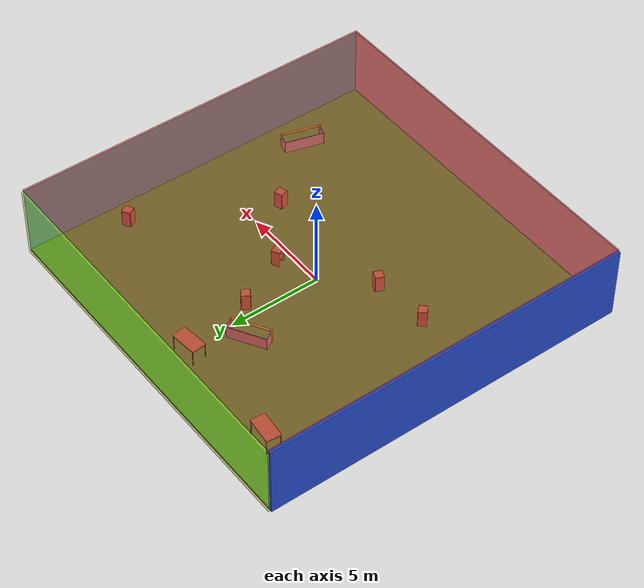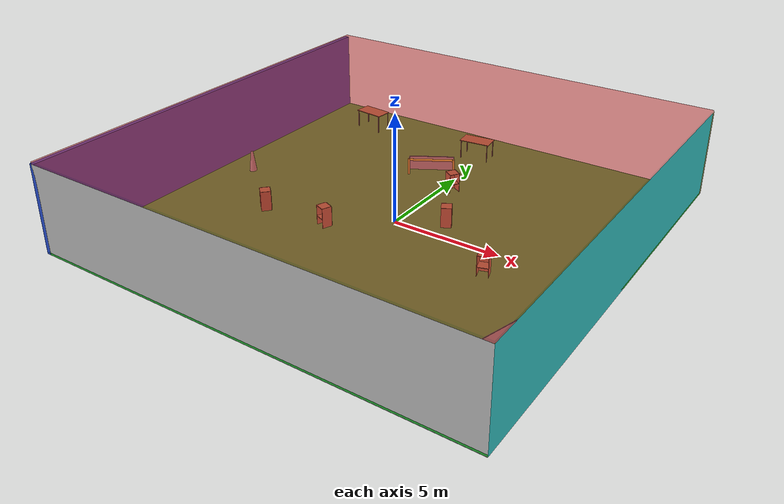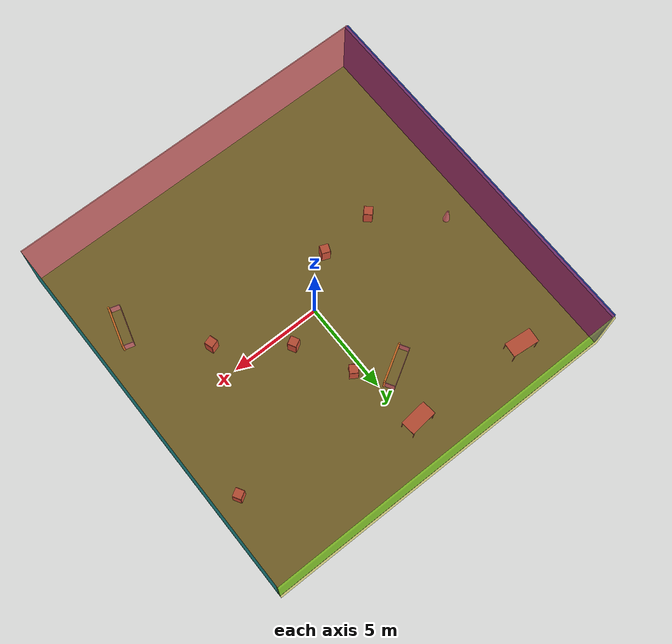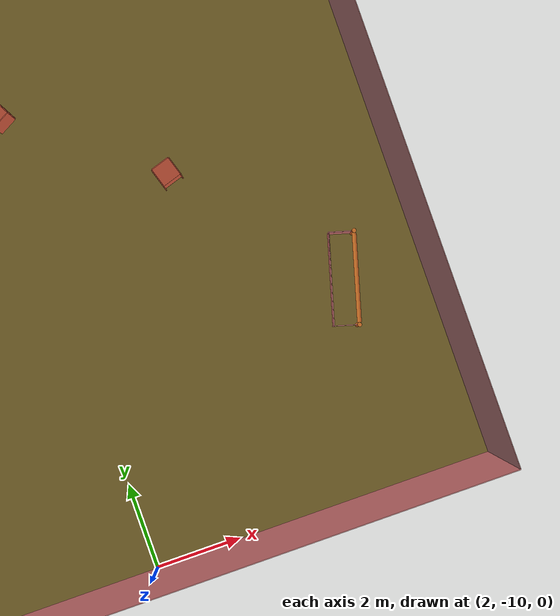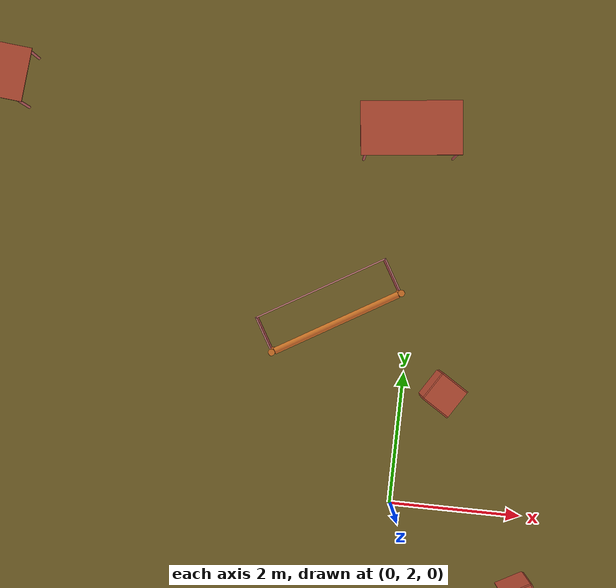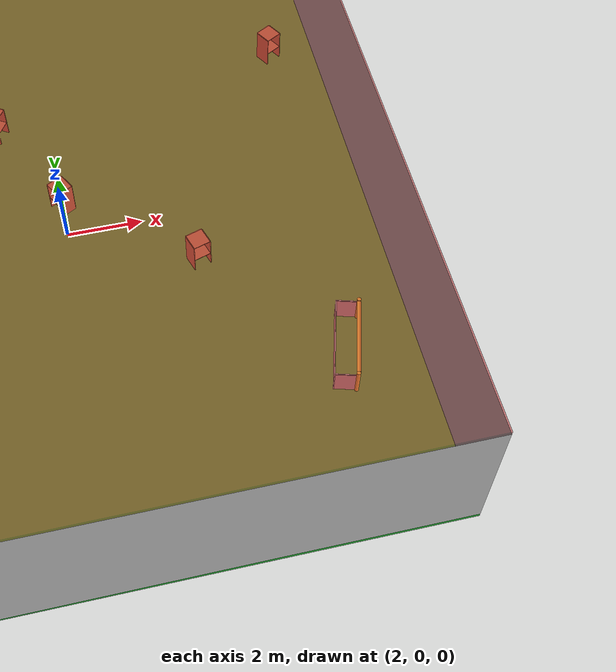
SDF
<sdf version="1.4">
 <world name="default">
  <physics type="ode">
   <max_step_size>0.001</max_step_size>
   <real_time_factor>1</real_time_factor>
   <real_time_update_rate>1000</real_time_update_rate>
   <gravity>0 0 -9.8</gravity>
  </physics>
  <scene><ambient>0.4 0.4 0.4 1</ambient><background>0.7 0.7 0.7 1</background><shadows>1</shadows></scene>
  <model name="Surrounding">
   <static>1</static>
   <link name="Ceiling">
    <collision name="Ceiling_Collision"><geometry><box><size>20 20 0.1</size></box></geometry></collision>
    <visual name="Ceiling_Visual">
     <geometry><box><size>20 20 0.1</size></box></geometry>
     <material>
      <script><uri>file://media/materials/scripts/gazebo.material</uri><name>Gazebo/RedTransparent</name></script>
     </material>
    </visual>
    <pose>0 0 4.05 0 0 0</pose>
   </link>
   <link name="Wall_South">
    <collision name="Wall_South_Collision">
     <geometry><box><size>20 0 4</size></box></geometry>
     <pose>0 0 2 0 -0 0</pose>
    </collision>
    <visual name="Wall_South_Visual">
     <pose>0 0 2 0 -0 0</pose>
     <geometry><box><size>20 0 4</size></box></geometry>
     <material>
      <script><uri>file://media/materials/scripts/gazebo.material</uri><name>Gazebo/CloudySky</name></script>
     </material>
    </visual>
    <velocity_decay><linear>0</linear><angular>0</angular></velocity_decay>
    <pose>0 -10 0 0 -0 0</pose>
   </link>
   <link name="Wall_East">
    <collision name="Wall_21_Collision">
     <geometry><box><size>20 0 4</size></box></geometry>
     <pose>0 0 2 0 -0 0</pose>
    </collision>
    <visual name="Wall_21_Visual">
     <pose>0 0 2 0 -0 0</pose>
     <geometry><box><size>20 0 4</size></box></geometry>
     <material>
      <script><uri>file://media/materials/scripts/gazebo.material</uri><name>Gazebo/Turquoise</name></script>
     </material>
    </visual>
    <velocity_decay><linear>0</linear><angular>0</angular></velocity_decay>
    <pose>10 0 0 0 -0 1.5708</pose>
   </link>
   <link name="Wall_North">
    <collision name="Wall_22_Collision">
     <geometry><box><size>20 0.2 4</size></box></geometry>
     <pose>0 0 2 0 -0 0</pose>
    </collision>
    <visual name="Wall_22_Visual">
     <pose>0 0 2 0 -0 0</pose>
     <geometry><box><size>20 0.2 4</size></box></geometry>
     <material>
      <script>
       <uri>file://media/materials/scripts/gazebo.material</uri>
       <name>Gazebo/YellowTransparent</name>
      </script>
     </material>
    </visual>
    <velocity_decay><linear>0</linear><angular>0</angular></velocity_decay>
    <pose>0 10 0 0 -0 0</pose>
   </link>
   <link name="Wall_West">
    <collision name="Wall_23_Collision">
     <geometry><box><size>20 0.2 4</size></box></geometry>
     <pose>0 0 2 0 -0 0</pose>
    </collision>
    <visual name="Wall_23_Visual">
     <pose>0 0 2 0 -0 0</pose>
     <geometry><box><size>20 0.2 4</size></box></geometry>
     <material>
      <script><uri>file://media/materials/scripts/gazebo.material</uri><name>Gazebo/Blue</name></script>
     </material>
    </visual>
    <velocity_decay><linear>0</linear><angular>0</angular></velocity_decay>
    <pose>-10 0 0 0 0 -1.5708</pose>
   </link>
   <link name="Ground_link">
    <collision name="collision">
     <pose>0 0 .05 0 -0 0</pose>
     <geometry><box><size>20 20 0.1</size></box></geometry>
    </collision>
    <visual name="visual">
     <pose>0 0 .05 0 -0 0</pose>
     <geometry><box><size>20 20 0.1</size></box></geometry>
     <material>
      <script><uri>file://media/materials/scripts/gazebo.material</uri><name>Gazebo/Green</name></script>
     </material>
    </visual>
   </link>
   <static>1</static>
  </model>
  <spherical_coordinates>
   <surface_model>EARTH_WGS84</surface_model>
   <latitude_deg>0</latitude_deg>
   <longitude_deg>0</longitude_deg>
   <elevation>0</elevation>
   <heading_deg>0</heading_deg>
  </spherical_coordinates>
  <light name="lightball_0" type="diffuse">
   <diffuse>0.8 0.8 0.8 1</diffuse>
   <specular>0.2 0.2 0.2 1</specular>
   <attenuation>
    <range>100</range>
    <constant>0.7</constant>
    <linear>0.01</linear>
    <quadratic>0.001</quadratic>
   </attenuation>
   <direction>-0.5 0.1 -0.9</direction>
   <pose>4.77531837187 -7.83731737004 1.26102545558 0 0 0</pose>
  </light>
  <light name="lightball_1" type="diffuse">
   <diffuse>0.8 0.8 0.8 1</diffuse>
   <specular>0.2 0.2 0.2 1</specular>
   <attenuation>
    <range>100</range>
    <constant>0.7</constant>
    <linear>0.01</linear>
    <quadratic>0.001</quadratic>
   </attenuation>
   <direction>-0.5 0.1 -0.9</direction>
   <pose>-9.62806555913 -8.18330609791 2.96593274341 0 0 0</pose>
  </light>
  <light name="lightball_2" type="diffuse">
   <diffuse>0.8 0.8 0.8 1</diffuse>
   <specular>0.2 0.2 0.2 1</specular>
   <attenuation>
    <range>100</range>
    <constant>0.7</constant>
    <linear>0.01</linear>
    <quadratic>0.001</quadratic>
   </attenuation>
   <direction>-0.5 0.1 -0.9</direction>
   <pose>-4.70099219354 3.20699094666 1.52904652307 0 0 0</pose>
  </light>
  <light name="lightball_3" type="diffuse">
   <diffuse>0.8 0.8 0.8 1</diffuse>
   <specular>0.2 0.2 0.2 1</specular>
   <attenuation>
    <range>100</range>
    <constant>0.7</constant>
    <linear>0.01</linear>
    <quadratic>0.001</quadratic>
   </attenuation>
   <direction>-0.5 0.1 -0.9</direction>
   <pose>8.72377186163 -3.32355203401 0.871125186465 0 0 0</pose>
  </light>
  <light name="lightball_4" type="diffuse">
   <diffuse>0.8 0.8 0.8 1</diffuse>
   <specular>0.2 0.2 0.2 1</specular>
   <attenuation>
    <range>100</range>
    <constant>0.7</constant>
    <linear>0.01</linear>
    <quadratic>0.001</quadratic>
   </attenuation>
   <direction>-0.5 0.1 -0.9</direction>
   <pose>6.37913714992 -1.68511161814 1.3871704113 0 0 0</pose>
  </light>
  <light name="lightball_5" type="diffuse">
   <diffuse>0.8 0.8 0.8 1</diffuse>
   <specular>0.2 0.2 0.2 1</specular>
   <attenuation>
    <range>100</range>
    <constant>0.7</constant>
    <linear>0.01</linear>
    <quadratic>0.001</quadratic>
   </attenuation>
   <direction>-0.5 0.1 -0.9</direction>
   <pose>7.72096912664 6.05974167566 2.3486851437 0 0 0</pose>
  </light>
  <light name="lightball_6" type="diffuse">
   <diffuse>0.8 0.8 0.8 1</diffuse>
   <specular>0.2 0.2 0.2 1</specular>
   <attenuation>
    <range>100</range>
    <constant>0.7</constant>
    <linear>0.01</linear>
    <quadratic>0.001</quadratic>
   </attenuation>
   <direction>-0.5 0.1 -0.9</direction>
   <pose>9.0882894075 2.79127827169 2.70816879269 0 0 0</pose>
  </light>
  <include>
   <uri>model://construction_cone</uri>
   <pose>-8.42698956139 0.309557851539 0 0 0 0.441023350969</pose>
  </include>
  <include><uri>model://table</uri><pose>-6.74928987642 7.87818275304 0 0 0 3.04732367811</pose></include>
  <include><uri>model://cabinet</uri><pose>-5.30122848716 -2.28225203362 0 0 0 0.821019893997</pose></include>
  <include><uri>model://cabinet</uri><pose>-2.24425356124 -2.02042943325 0 0 0 1.1856357962</pose></include>
  <include>
   <uri>model://robocup_3Dsim_goal</uri>
   <pose>-1.11422271076 4.67116677444 0 0 0 2.10213883643</pose>
  </include>
  <include><uri>model://table</uri><pose>-0.317987964616 7.62897667754 0 0 0 0.107567235703</pose></include>
  <include><uri>model://cabinet</uri><pose>2.02155294479 0.856917510664 0 0 0 0.49822900574</pose></include>
  <include><uri>model://cabinet</uri><pose>0.581735353247 3.78258158816 0 0 0 2.57598201402</pose></include>
  <include><uri>model://cabinet</uri><pose>5.21609966011 -1.65676312171 0 0 0 1.87476205501</pose></include>
  <include>
   <uri>model://robocup_3Dsim_goal</uri>
   <pose>8.4385119365 -5.26877669854 0 0 0 2.86186091586</pose>
  </include>
  <include><uri>model://cabinet</uri><pose>8.68400658647 5.1428984944 0 0 0 2.09515468082</pose></include>
 </world>
</sdf>

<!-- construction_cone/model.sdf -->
<sdf version="1.5">
  <model name="Construction Cone">
    <link name="link">
      <collision name="collision">
        <geometry>
          <mesh>
            <scale>10 10 10</scale>
            <uri>file://isr-testbed/construction_cone/meshes/construction_cone.dae</uri>
          </mesh>
        </geometry>
      </collision>
      <visual name="visual">
        <geometry>
          <mesh>
            <scale>10 10 10</scale>
            <uri>file://isr-testbed/construction_cone/meshes/construction_cone.dae</uri>
          </mesh>
        </geometry>
      </visual>
    </link>
  </model>
</sdf>

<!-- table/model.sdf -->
<sdf version="1.5">
  <model name="table">
    <static>true</static>
    <link name="link">
      <collision name="surface">
        <pose>0 0 1.0 0 0 0</pose>
        <geometry>
          <box>
            <size>1.5 0.8 0.03</size>
          </box>
        </geometry>
        <surface>
          <friction>
            <ode>
              <mu>0.6</mu>
              <mu2>0.6</mu2>
            </ode>
          </friction>
        </surface>
      </collision>
      <visual name="visual1">
        <pose>0 0 1.0 0 0 0</pose>
        <geometry>
          <box>
            <size>1.5 0.8 0.03</size>
          </box>
        </geometry>
        <material>
          <script>
            <uri>model://media/materials/scripts/gazebo.material</uri>
            <name>Gazebo/Wood</name>
          </script>
        </material>
      </visual>
      <collision name="front_left_leg">
        <pose>0.68 0.38 0.5 0 0 0</pose>
        <geometry>
          <cylinder>
            <radius>0.02</radius>
            <length>1.0</length>
          </cylinder>
        </geometry>
      </collision>
      <visual name="front_left_leg">
        <pose>0.68 0.38 0.5 0 0 0</pose>
        <geometry>
          <cylinder>
            <radius>0.02</radius>
            <length>1.0</length>
          </cylinder>
        </geometry>
        <material>
          <script>
            <uri>model://media/materials/scripts/gazebo.material</uri>
            <name>Gazebo/Grey</name>
          </script>
        </material>
      </visual>
      <collision name="front_right_leg">
        <pose>0.68 -0.38 0.5 0 0 0</pose>
        <geometry>
          <cylinder>
            <radius>0.02</radius>
            <length>1.0</length>
          </cylinder>
        </geometry>
      </collision>
      <visual name="front_right_leg">
        <pose>0.68 -0.38 0.5 0 0 0</pose>
        <geometry>
          <cylinder>
            <radius>0.02</radius>
            <length>1.0</length>
          </cylinder>
        </geometry>
        <material>
          <script>
            <uri>model://media/materials/scripts/gazebo.material</uri>
            <name>Gazebo/Grey</name>
          </script>
        </material>
      </visual>
      <collision name="back_right_leg">
        <pose>-0.68 -0.38 0.5 0 0 0</pose>
        <geometry>
          <cylinder>
            <radius>0.02</radius>
            <length>1.0</length>
          </cylinder>
        </geometry>
      </collision>
      <visual name="back_right_leg">
        <pose>-0.68 -0.38 0.5 0 0 0</pose>
        <geometry>
          <cylinder>
            <radius>0.02</radius>
            <length>1.0</length>
          </cylinder>
        </geometry>
        <material>
          <script>
            <uri>model://media/materials/scripts/gazebo.material</uri>
            <name>Gazebo/Grey</name>
          </script>
        </material>
      </visual>
      <collision name="back_left_leg">
        <pose>-0.68 0.38 0.5 0 0 0</pose>
        <geometry>
          <cylinder>
            <radius>0.02</radius>
            <length>1.0</length>
          </cylinder>
        </geometry>
      </collision>
      <visual name="back_left_leg">
        <pose>-0.68 0.38 0.5 0 0 0</pose>
        <geometry>
          <cylinder>
            <radius>0.02</radius>
            <length>1.0</length>
          </cylinder>
        </geometry>
        <material>
          <script>
            <uri>model://media/materials/scripts/gazebo.material</uri>
            <name>Gazebo/Grey</name>
          </script>
        </material>
      </visual>
    </link>
  </model>
</sdf>

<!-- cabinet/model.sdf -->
<sdf version="1.5">
  <model name="cabinet">
    <static>true</static>
    <link name="cabinet_bottom_plate">
      <inertial>
        <pose>0 0 -1 0 0 0</pose>
        <inertia>
          <ixx>2.050000</ixx>
          <ixy>0</ixy>
          <ixz>0</ixz>
          <iyy>2.050000</iyy>
          <iyz>0</iyz>
          <izz>2.050000</izz>
        </inertia>
        <mass>25.000000</mass>
      </inertial>
      <collision name="cabinet_bottom_plate_geom">
        <pose>0 0 0.010000 0 0 0</pose>
        <geometry>
          <box>
            <size>0.450000 0.450000 0.020000</size>
          </box>
        </geometry>
      </collision>
      <visual name="cabinet_bottom_plate_geom_visual">
        <pose>0 0 0.010000 0 0 0</pose>
        <geometry>
          <box>
            <size>0.450000 0.450000 0.020000</size>
          </box>
        </geometry>
        <material>
          <script>
            <uri>model://media/materials/scripts/gazebo.material</uri>
            <name>Gazebo/Wood</name>
          </script>
        </material>
      </visual>
      <collision name="cabinet_bottom_plate_geom_cabinet_back_plate">
        <pose>0.235000 0 0.510000 0 0 0</pose>
        <geometry>
          <box>
            <size>0.020000 0.450000 1.020000</size>
          </box>
        </geometry>
      </collision>
      <visual name="cabinet_bottom_plate_geom_cabinet_back_plate_visual">
        <pose>0.235000 0 0.510000 0 0 0</pose>
        <geometry>
          <box>
            <size>0.020000 0.450000 1.020000</size>
          </box>
        </geometry>
        <material>
          <script>
            <uri>model://media/materials/scripts/gazebo.material</uri>
            <name>Gazebo/Wood</name>
          </script>
        </material>
      </visual>
      <collision name="cabinet_bottom_plate_geom_cabinet_left_plate">
        <pose>0 0.235000 0.510000 0 0 0</pose>
        <geometry>
          <box>
            <size>0.450000 0.020000 1.020000</size>
          </box>
        </geometry>
      </collision>
      <visual name="cabinet_bottom_plate_geom_cabinet_left_plate_visual">
        <pose>0 0.235000 0.510000 0 0 0</pose>
        <geometry>
          <box>
            <size>0.450000 0.020000 1.020000</size>
          </box>
        </geometry>
        <material>
          <script>
            <uri>model://media/materials/scripts/gazebo.material</uri>
            <name>Gazebo/Wood</name>
          </script>
        </material>
      </visual>
      <collision name="cabinet_bottom_plate_geom_cabinet_middle_plate">
        <pose>0 0 0.510000 0 0 0</pose>
        <geometry>
          <box>
            <size>0.450000 0.450000 0.020000</size>
          </box>
        </geometry>
      </collision>
      <visual name="cabinet_bottom_plate_geom_cabinet_middle_plate_visual">
        <pose>0 0 0.510000 0 0 0</pose>
        <geometry>
          <box>
            <size>0.450000 0.450000 0.020000</size>
          </box>
        </geometry>
        <material>
          <script>
            <uri>model://media/materials/scripts/gazebo.material</uri>
            <name>Gazebo/Wood</name>
          </script>
        </material>
      </visual>
      <collision name="cabinet_bottom_plate_geom_cabinet_right_plate">
        <pose>0 -0.235000 0.510000 0 0 0</pose>
        <geometry>
          <box>
            <size>0.450000 0.020000 1.020000</size>
          </box>
        </geometry>
      </collision>
      <visual name="cabinet_bottom_plate_geom_cabinet_right_plate_visual">
        <pose>0 -0.235000 0.510000 0 0 0</pose>
        <geometry>
          <box>
            <size>0.450000 0.020000 1.020000</size>
          </box>
        </geometry>
        <material>
          <script>
            <uri>model://media/materials/scripts/gazebo.material</uri>
            <name>Gazebo/Wood</name>
          </script>
        </material>
      </visual>
      <collision name="cabinet_bottom_plate_geom_cabinet_top_plate">
        <pose>0 0 1.010000 0 0 0</pose>
        <geometry>
          <box>
            <size>0.450000 0.450000 0.020000</size>
          </box>
        </geometry>
      </collision>
      <visual name="cabinet_bottom_plate_geom_cabinet_top_plate_visual">
        <pose>0 0 1.010000 0 0 0</pose>
        <geometry>
          <box>
            <size>0.450000 0.450000 0.020000</size>
          </box>
        </geometry>
        <material>
          <script>
            <uri>model://media/materials/scripts/gazebo.material</uri>
            <name>Gazebo/Wood</name>
          </script>
        </material>
      </visual>
    </link>
  </model>
</sdf>

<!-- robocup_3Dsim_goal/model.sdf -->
<sdf version="1.5">
  <model name="robocup_3d_goal">
    <static>true</static>
    <link name="left_post">
      <pose>0 1.05 0.45 0 0 0</pose>
      <collision name="collision">
        <geometry>
          <cylinder>
            <radius>0.05</radius>
            <length>0.9</length>
          </cylinder>
        </geometry>
      </collision>
      <visual name="visual">
        <geometry>
          <cylinder>
            <radius>0.05</radius>
            <length>0.9</length>
          </cylinder>
        </geometry>
        <material>
          <script>
            <uri>file://media/materials/scripts/gazebo.material</uri>
            <name>Gazebo/ZincYellow</name>
          </script>
        </material>
      </visual>
    </link>
    <link name="left_support_horiz_lower">
      <pose>0.30 1.05 0.01 0 0 0</pose>
      <collision name="collision">
        <geometry>
          <box>
            <size>0.50 0.02 0.02</size>
          </box>
        </geometry>
      </collision>
      <visual name="visual">
        <geometry>
          <box>
            <size>0.50 0.02 0.02</size>
          </box>
        </geometry>
        <material>
          <script>
            <uri>file://media/materials/scripts/gazebo.material</uri>
            <name>Gazebo/White</name>
          </script>
        </material>
      </visual>
    </link>
    <link name="left_support_horiz_upper">
      <pose>0.30 1.05 0.79 0 0 0</pose>
      <collision name="collision">
        <geometry>
          <box>
            <size>0.50 0.02 0.02</size>
          </box>
        </geometry>
      </collision>
      <visual name="visual">
        <geometry>
          <box>
            <size>0.50 0.02 0.02</size>
          </box>
        </geometry>
        <material>
          <script>
            <uri>file://media/materials/scripts/gazebo.material</uri>
            <name>Gazebo/White</name>
          </script>
        </material>
      </visual>
    </link>
    <link name="left_support_vertical">
      <pose>0.56 1.05 0.4 0 1.5708 0</pose>
      <collision name="collision">
        <geometry>
          <box>
            <size>0.80 0.02 0.02</size>
          </box>
        </geometry>
      </collision>
      <visual name="visual">
        <geometry>
          <box>
            <size>0.80 0.02 0.02</size>
          </box>
        </geometry>
        <material>
          <script>
            <uri>file://media/materials/scripts/gazebo.material</uri>
            <name>Gazebo/White</name>
          </script>
        </material>
      </visual>
    </link>
    <link name="right_support_horiz_lower">
      <pose>0.30 -1.05 0.01 0 0 0</pose>
      <collision name="collision">
        <geometry>
          <box>
            <size>0.50 0.02 0.02</size>
          </box>
        </geometry>
      </collision>
      <visual name="visual">
        <geometry>
          <box>
            <size>0.50 0.02 0.02</size>
          </box>
        </geometry>
        <material>
          <script>
            <uri>file://media/materials/scripts/gazebo.material</uri>
            <name>Gazebo/White</name>
          </script>
        </material>
      </visual>
    </link>
    <link name="right_support_horiz_upper">
      <pose>0.30 -1.05 0.79 0 0 0</pose>
      <collision name="collision">
        <geometry>
          <box>
            <size>0.50 0.02 0.02</size>
          </box>
        </geometry>
      </collision>
      <visual name="visual">
        <geometry>
          <box>
            <size>0.50 0.02 0.02</size>
          </box>
        </geometry>
        <material>
          <script>
            <uri>file://media/materials/scripts/gazebo.material</uri>
            <name>Gazebo/White</name>
          </script>
        </material>
      </visual>
    </link>
    <link name="right_support_vertical">
      <pose>0.56 -1.05 0.4 0 1.5708 0</pose>
      <collision name="collision">
        <geometry>
          <box>
            <size>0.80 0.02 0.02</size>
          </box>
        </geometry>
      </collision>
      <visual name="visual">
        <geometry>
          <box>
            <size>0.80 0.02 0.02</size>
          </box>
        </geometry>
        <material>
          <script>
            <uri>file://media/materials/scripts/gazebo.material</uri>
            <name>Gazebo/White</name>
          </script>
        </material>
      </visual>
    </link>
    <link name="center_support_horiz_lower">
      <pose>0.56 0 0.01 0 1.5708 0</pose>
      <collision name="collision">
        <geometry>
          <box>
            <size>0.02 2.08 0.02</size>
          </box>
        </geometry>
      </collision>
      <visual name="visual">
        <geometry>
          <box>
            <size>0.02 2.08 0.02</size>
          </box>
        </geometry>
        <material>
          <script>
            <uri>file://media/materials/scripts/gazebo.material</uri>
            <name>Gazebo/White</name>
          </script>
        </material>
      </visual>
    </link>
    <link name="center_support_horiz_upper">
      <pose>0.56 0 0.79 0 1.5708 0</pose>
      <collision name="collision">
        <geometry>
          <box>
            <size>0.02 2.08 0.02</size>
          </box>
        </geometry>
      </collision>
      <visual name="visual">
        <geometry>
          <box>
            <size>0.02 2.08 0.02</size>
          </box>
        </geometry>
        <material>
          <script>
            <uri>file://media/materials/scripts/gazebo.material</uri>
            <name>Gazebo/White</name>
          </script>
        </material>
      </visual>
    </link>
    <link name="right_post">
      <pose>0 -1.05 0.45 0 0 0</pose>
      <collision name="collision">
        <geometry>
          <cylinder>
            <radius>0.05</radius>
            <length>0.9</length>
          </cylinder>
        </geometry>
      </collision>
      <visual name="visual">
        <geometry>
          <cylinder>
            <radius>0.05</radius>
            <length>0.9</length>
          </cylinder>
        </geometry>
        <material>
          <script>
            <uri>file://media/materials/scripts/gazebo.material</uri>
            <name>Gazebo/ZincYellow</name>
          </script>
        </material>
      </visual>
    </link>
    <link name="crossbar">
      <pose>0 0 0.85 1.57 1.57 0</pose>
      <collision name="collision">
        <geometry>
          <cylinder>
            <radius>0.05</radius>
            <length>2.0</length>
          </cylinder>
        </geometry>
      </collision>
      <visual name="visual">
        <geometry>
          <cylinder>
            <radius>0.05</radius>
            <length>2.0</length>
          </cylinder>
        </geometry>
        <material>
          <script>
            <uri>file://media/materials/scripts/gazebo.material</uri>
            <name>Gazebo/ZincYellow</name>
          </script>
        </material>
      </visual>
    </link>
    <link name="center_net">
      <pose>0.56 0 0.40 0 0 0</pose>
      <collision name="collision">
        <geometry>
          <box>
            <size>0.01 2.1 0.80</size>
          </box>
        </geometry>
      </collision>
      <visual name="visual">
        <geometry>
          <box>
            <size>0.01 2.1 0.80</size>
          </box>
        </geometry>
        <material>
          <script>
            <uri>model://../model_source/models/robocup09_spl_field/materials/scripts/</uri>
            <uri>model://../model_source/models/robocup09_spl_field/materials/textures/</uri>
            <name>RoboCup/Net</name>
          </script>
        </material>
      </visual>
    </link>
    <link name="left_net">
      <pose>0.30 1.05 0.40 0 0 0</pose>
      <collision name="collision">
        <geometry>
          <box>
            <size>0.50 0.01 0.76</size>
          </box>
        </geometry>
      </collision>
      <visual name="visual">
        <geometry>
          <box>
            <size>0.50 0.01 0.76</size>
          </box>
        </geometry>
        <material>
          <script>
            <uri>model://../model_source/models/robocup09_spl_field/materials/scripts/</uri>
            <uri>model://../model_source/models/robocup09_spl_field/materials/textures/</uri>
            <name>RoboCup/Net</name>
          </script>
        </material>
      </visual>
    </link>
    <link name="right_net">
      <pose>0.30 -1.05 0.40 0 0 0</pose>
      <collision name="collision">
        <geometry>
          <box>
            <size>0.50 0.01 0.76</size>
          </box>
        </geometry>
      </collision>
      <visual name="visual">
        <geometry>
          <box>
            <size>0.50 0.01 0.76</size>
          </box>
        </geometry>
        <material>
          <script>
            <uri>model://../model_source/models/robocup09_spl_field/materials/scripts/</uri>
            <uri>model://../model_source/models/robocup09_spl_field/materials/textures/</uri>
            <name>RoboCup/Net</name>
          </script>
        </material>
      </visual>
    </link>
  </model>
</sdf>
